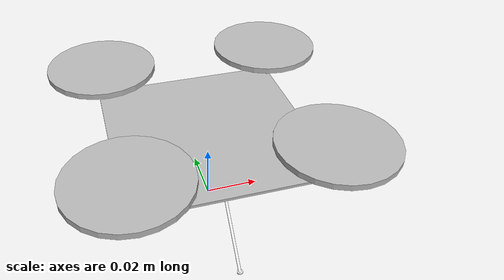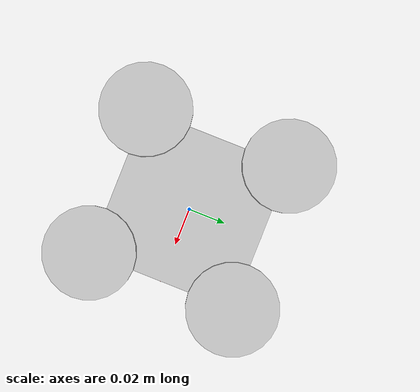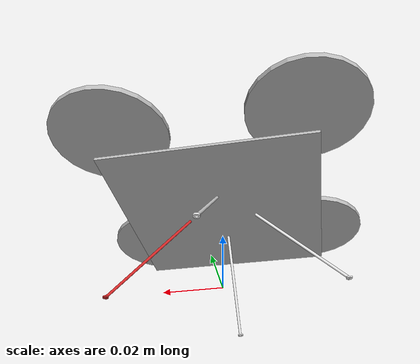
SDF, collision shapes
<?xml version='1.0'?>
<sdf version='1.6'>
  <model name='crazyflie_landing_gears2'>
    <link name='base_link'>
      <pose frame=''>0 -0 0.03 0 -0 0</pose>
      <inertial>
        <pose frame=''>0 0 0 0 -0 0</pose>
        <mass>0.026</mass>
        <inertia>
          <ixx>1.65717e-05</ixx>
          <ixy>0</ixy>
          <ixz>0</ixz>
          <iyy>1.66556e-05</iyy>
          <iyz>0</iyz>
          <izz>2.92617e-05</izz>
        </inertia>
      </inertial>
      <gravity>1</gravity>
      <velocity_decay/>
      <sensor name='head_hokuyo_sensor' type='ray'>
        <pose frame=''>0 0 0.01 0 -1.5707 0</pose>
        <visualize>1</visualize>
        <update_rate>500</update_rate>
        <ray>
          <noise>
            <type>gaussian</type>
            <mean>0</mean>
            <stddev>0.05</stddev>
          </noise>
          <scan>
            <horizontal>
              <samples>1</samples>
              <resolution>1</resolution>
              <min_angle>-0</min_angle>
              <max_angle>0</max_angle>
            </horizontal>
            <vertical>
              <samples>1</samples>
              <min_angle>0</min_angle>
              <max_angle>0</max_angle>
            </vertical>
          </scan>
          <range>
            <min>0.04</min>
            <max>4</max>
            <resolution>0.02</resolution>
          </range>
        </ray>
        <plugin name='laser_back' filename='libgazebo_ros_laser.so'>
          <topicName>zranger2/scan</topicName>
          <robotNamespace>/</robotNamespace>
        </plugin>
      </sensor>
      <sensor name='camera1' type='camera'>
        <pose frame=''>0 0 0.015 0 -1.5707 0</pose>
        <update_rate>500</update_rate>
        <camera name='head'>
          <horizontal_fov>0.733038</horizontal_fov>
          <image>
            <width>36</width>
            <height>36</height>
            <format>R8G8B8</format>
          </image>
          <clip>
            <near>0.08</near>
            <far>300</far>
          </clip>
          <noise>
            <type>gaussian</type>
            <mean>0</mean>
            <stddev>0.007</stddev>
          </noise>
        </camera>
        <plugin name='camera_controller' filename='libgazebo_ros_camera.so'>
          <alwaysOn>1</alwaysOn>
          <updateRate>0.0</updateRate>
          <cameraName>camera</cameraName>
          <imageTopicName>image_raw</imageTopicName>
          <cameraInfoTopicName>camera_info</cameraInfoTopicName>
          <hackBaseline>0.07</hackBaseline>
          <distortionK1>0.0</distortionK1>
          <distortionK2>0.0</distortionK2>
          <distortionK3>0.0</distortionK3>
          <distortionT1>0.0</distortionT1>
          <distortionT2>0.0</distortionT2>
          <robotNamespace>/</robotNamespace>
        </plugin>
      </sensor>
      <self_collide>0</self_collide>
      <enable_wind>0</enable_wind>
      <kinematic>0</kinematic>
      <visual name='base_link_inertia_visual'>
        <pose frame=''>0 0 0 0 -0 0</pose>
        <geometry>
          <mesh>
            <scale>1 1 1</scale>
            <uri>model://crazyflie_landing_gears/meshes/crazyflie.dae</uri>
          </mesh>
        </geometry>
        <material>
          <script>
            <uri>__default__</uri>
            <name>__default__</name>
          </script>
        </material>
        <transparency>0</transparency>
        <cast_shadows>1</cast_shadows>
      </visual>
      <collision name='base_link_inertia_collision'>
        <laser_retro>0</laser_retro>
        <max_contacts>10</max_contacts>
        <pose frame=''>0 0 0 0 -0 0</pose>
        <geometry>
          <box>
            <size>0.07 0.07 0.001</size>
          </box>
        </geometry>
        <surface>
          <friction>
            <ode>
              <mu>1</mu>
              <mu2>1</mu2>
              <fdir1>0 0 0</fdir1>
              <slip1>0</slip1>
              <slip2>0</slip2>
            </ode>
            <torsional>
              <coefficient>1</coefficient>
              <patch_radius>0</patch_radius>
              <surface_radius>0</surface_radius>
              <use_patch_radius>1</use_patch_radius>
              <ode>
                <slip>0</slip>
              </ode>
            </torsional>
          </friction>
          <bounce>
            <restitution_coefficient>0</restitution_coefficient>
            <threshold>1e+06</threshold>
          </bounce>
          <contact>
            <collide_without_contact>0</collide_without_contact>
            <collide_without_contact_bitmask>1</collide_without_contact_bitmask>
            <collide_bitmask>1</collide_bitmask>
            <ode>
              <soft_cfm>0</soft_cfm>
              <soft_erp>0.2</soft_erp>
              <kp>1e+13</kp>
              <kd>1</kd>
              <max_vel>0</max_vel>
              <min_depth>0.001</min_depth>
            </ode>
            <bullet>
              <split_impulse>1</split_impulse>
              <split_impulse_penetration_threshold>-0.01</split_impulse_penetration_threshold>
              <soft_cfm>0</soft_cfm>
              <soft_erp>0.2</soft_erp>
              <kp>1e+13</kp>
              <kd>1</kd>
            </bullet>
          </contact>
        </surface>
      </collision>
    </link>
    <link name='landing_0'>
      <pose frame=''>0.026 -0 0.014 0 -0.785 0</pose>
      <inertial>
        <pose frame=''>0 0 0 0 -0 0</pose>
        <mass>0.0004</mass>
        <inertia>
          <ixx>1.225e-07</ixx>
          <ixy>0</ixy>
          <ixz>0</ixz>
          <iyy>1.225e-07</iyy>
          <iyz>0</iyz>
          <izz>1.5e-10</izz>
        </inertia>
      </inertial>
      <gravity>1</gravity>
      <velocity_decay/>
      <self_collide>0</self_collide>
      <enable_wind>0</enable_wind>
      <kinematic>0</kinematic>
      <visual name='landing_0_visual'>
        <pose frame=''>0 0 0 0 -0 0</pose>
        <geometry>
          <cylinder>
            <radius>0.001</radius>
            <length>0.04</length>
          </cylinder>
        </geometry>
        <material>
          <script>
            <name>Gazebo/Red</name>
            <uri>file://media/materials/scripts/gazebo.material</uri>
          </script>
        </material>
        <transparency>0</transparency>
        <cast_shadows>1</cast_shadows>
      </visual>
      <collision name='landing_0_collision'>
        <laser_retro>0</laser_retro>
        <max_contacts>10</max_contacts>
        <pose frame=''>0 0 0 0 -0 0</pose>
        <geometry>
          <cylinder>
            <radius>0.0005</radius>
            <length>0.04</length>
          </cylinder>
        </geometry>
        <surface>
          <friction>
            <ode>
              <mu>100000</mu>
              <mu2>100000</mu2>
              <fdir1>0 0 0</fdir1>
              <slip1>0</slip1>
              <slip2>0</slip2>
            </ode>
            <torsional>
              <coefficient>1</coefficient>
              <patch_radius>0</patch_radius>
              <surface_radius>0</surface_radius>
              <use_patch_radius>1</use_patch_radius>
              <ode>
                <slip>0</slip>
              </ode>
            </torsional>
          </friction>
          <bounce>
            <restitution_coefficient>0</restitution_coefficient>
            <threshold>1e+06</threshold>
          </bounce>
          <contact>
            <collide_without_contact>0</collide_without_contact>
            <collide_without_contact_bitmask>1</collide_without_contact_bitmask>
            <collide_bitmask>1</collide_bitmask>
            <ode>
              <soft_cfm>0</soft_cfm>
              <soft_erp>0.2</soft_erp>
              <kp>1e+13</kp>
              <kd>1</kd>
              <max_vel>0.01</max_vel>
              <min_depth>0.001</min_depth>
            </ode>
            <bullet>
              <split_impulse>1</split_impulse>
              <split_impulse_penetration_threshold>-0.01</split_impulse_penetration_threshold>
              <soft_cfm>0</soft_cfm>
              <soft_erp>0.2</soft_erp>
              <kp>1e+13</kp>
              <kd>1</kd>
            </bullet>
          </contact>
        </surface>
      </collision>
    </link>
    <link name='landing_1'>
      <pose frame=''>-0 0.026 0.014 0.785 -0 0</pose>
      <inertial>
        <pose frame=''>0 0 0 0 -0 0</pose>
        <mass>0.0004</mass>
        <inertia>
          <ixx>1.225e-07</ixx>
          <ixy>0</ixy>
          <ixz>0</ixz>
          <iyy>1.225e-07</iyy>
          <iyz>0</iyz>
          <izz>1.5e-10</izz>
        </inertia>
      </inertial>
      <gravity>1</gravity>
      <velocity_decay/>
      <self_collide>0</self_collide>
      <enable_wind>0</enable_wind>
      <kinematic>0</kinematic>
      <visual name='landing_1_visual'>
        <pose frame=''>0 0 0 0 -0 0</pose>
        <geometry>
          <cylinder>
            <radius>0.001</radius>
            <length>0.04</length>
          </cylinder>
        </geometry>
        <material>
          <script>
            <name>Gazebo/White</name>
            <uri>file://media/materials/scripts/gazebo.material</uri>
          </script>
        </material>
        <transparency>0</transparency>
        <cast_shadows>1</cast_shadows>
      </visual>
      <collision name='landing_1_collision'>
        <laser_retro>0</laser_retro>
        <max_contacts>10</max_contacts>
        <pose frame=''>0 0 0 0 -0 0</pose>
        <geometry>
          <cylinder>
            <radius>0.0005</radius>
            <length>0.04</length>
          </cylinder>
        </geometry>
        <surface>
          <friction>
            <ode>
              <mu>100000</mu>
              <mu2>100000</mu2>
              <fdir1>0 0 0</fdir1>
              <slip1>0</slip1>
              <slip2>0</slip2>
            </ode>
            <torsional>
              <coefficient>1</coefficient>
              <patch_radius>0</patch_radius>
              <surface_radius>0</surface_radius>
              <use_patch_radius>1</use_patch_radius>
              <ode>
                <slip>0</slip>
              </ode>
            </torsional>
          </friction>
          <bounce>
            <restitution_coefficient>0</restitution_coefficient>
            <threshold>1e+06</threshold>
          </bounce>
          <contact>
            <collide_without_contact>0</collide_without_contact>
            <collide_without_contact_bitmask>1</collide_without_contact_bitmask>
            <collide_bitmask>1</collide_bitmask>
            <ode>
              <soft_cfm>0</soft_cfm>
              <soft_erp>0.2</soft_erp>
              <kp>1e+13</kp>
              <kd>1</kd>
              <max_vel>0.01</max_vel>
              <min_depth>0.001</min_depth>
            </ode>
            <bullet>
              <split_impulse>1</split_impulse>
              <split_impulse_penetration_threshold>-0.01</split_impulse_penetration_threshold>
              <soft_cfm>0</soft_cfm>
              <soft_erp>0.2</soft_erp>
              <kp>1e+13</kp>
              <kd>1</kd>
            </bullet>
          </contact>
        </surface>
      </collision>
    </link>
    <link name='landing_2'>
      <pose frame=''>-0.026 -0 0.014 0 0.785 0</pose>
      <inertial>
        <pose frame=''>0 0 0 0 -0 0</pose>
        <mass>0.0004</mass>
        <inertia>
          <ixx>1.225e-07</ixx>
          <ixy>0</ixy>
          <ixz>0</ixz>
          <iyy>1.225e-07</iyy>
          <iyz>0</iyz>
          <izz>1.5e-10</izz>
        </inertia>
      </inertial>
      <gravity>1</gravity>
      <velocity_decay/>
      <self_collide>0</self_collide>
      <enable_wind>0</enable_wind>
      <kinematic>0</kinematic>
      <visual name='landing_2_visual'>
        <pose frame=''>0 0 0 0 -0 0</pose>
        <geometry>
          <cylinder>
            <radius>0.001</radius>
            <length>0.04</length>
          </cylinder>
        </geometry>
        <material>
          <script>
            <name>Gazebo/White</name>
            <uri>file://media/materials/scripts/gazebo.material</uri>
          </script>
        </material>
        <transparency>0</transparency>
        <cast_shadows>1</cast_shadows>
      </visual>
      <collision name='landing_2_collision'>
        <laser_retro>0</laser_retro>
        <max_contacts>10</max_contacts>
        <pose frame=''>0 0 0 0 -0 0</pose>
        <geometry>
          <cylinder>
            <radius>0.0005</radius>
            <length>0.04</length>
          </cylinder>
        </geometry>
        <surface>
          <friction>
            <ode>
              <mu>100000</mu>
              <mu2>100000</mu2>
              <fdir1>0 0 0</fdir1>
              <slip1>0</slip1>
              <slip2>0</slip2>
            </ode>
            <torsional>
              <coefficient>1</coefficient>
              <patch_radius>0</patch_radius>
              <surface_radius>0</surface_radius>
              <use_patch_radius>1</use_patch_radius>
              <ode>
                <slip>0</slip>
              </ode>
            </torsional>
          </friction>
          <bounce>
            <restitution_coefficient>0</restitution_coefficient>
            <threshold>1e+06</threshold>
          </bounce>
          <contact>
            <collide_without_contact>0</collide_without_contact>
            <collide_without_contact_bitmask>1</collide_without_contact_bitmask>
            <collide_bitmask>1</collide_bitmask>
            <ode>
              <soft_cfm>0</soft_cfm>
              <soft_erp>0.2</soft_erp>
              <kp>1e+13</kp>
              <kd>1</kd>
              <max_vel>0.01</max_vel>
              <min_depth>0.001</min_depth>
            </ode>
            <bullet>
              <split_impulse>1</split_impulse>
              <split_impulse_penetration_threshold>-0.01</split_impulse_penetration_threshold>
              <soft_cfm>0</soft_cfm>
              <soft_erp>0.2</soft_erp>
              <kp>1e+13</kp>
              <kd>1</kd>
            </bullet>
          </contact>
        </surface>
      </collision>
    </link>
    <link name='landing_3'>
      <pose frame=''>-0 -0.026 0.014 -0.785 0 0</pose>
      <inertial>
        <pose frame=''>0 0 0 0 -0 0</pose>
        <mass>0.0004</mass>
        <inertia>
          <ixx>1.225e-07</ixx>
          <ixy>0</ixy>
          <ixz>0</ixz>
          <iyy>1.225e-07</iyy>
          <iyz>0</iyz>
          <izz>1.5e-10</izz>
        </inertia>
      </inertial>
      <gravity>1</gravity>
      <velocity_decay/>
      <self_collide>0</self_collide>
      <enable_wind>0</enable_wind>
      <kinematic>0</kinematic>
      <visual name='landing_3_visual'>
        <pose frame=''>0 0 0 0 -0 0</pose>
        <geometry>
          <cylinder>
            <radius>0.001</radius>
            <length>0.04</length>
          </cylinder>
        </geometry>
        <material>
          <script>
            <name>Gazebo/White</name>
            <uri>file://media/materials/scripts/gazebo.material</uri>
          </script>
        </material>
        <transparency>0</transparency>
        <cast_shadows>1</cast_shadows>
      </visual>
      <collision name='landing_3_collision'>
        <laser_retro>0</laser_retro>
        <max_contacts>10</max_contacts>
        <pose frame=''>0 0 0 0 -0 0</pose>
        <geometry>
          <cylinder>
            <radius>0.0005</radius>
            <length>0.04</length>
          </cylinder>
        </geometry>
        <surface>
          <friction>
            <ode>
              <mu>100000</mu>
              <mu2>100000</mu2>
              <fdir1>0 0 0</fdir1>
              <slip1>0</slip1>
              <slip2>0</slip2>
            </ode>
            <torsional>
              <coefficient>1</coefficient>
              <patch_radius>0</patch_radius>
              <surface_radius>0</surface_radius>
              <use_patch_radius>1</use_patch_radius>
              <ode>
                <slip>0</slip>
              </ode>
            </torsional>
          </friction>
          <bounce>
            <restitution_coefficient>0</restitution_coefficient>
            <threshold>1e+06</threshold>
          </bounce>
          <contact>
            <collide_without_contact>0</collide_without_contact>
            <collide_without_contact_bitmask>1</collide_without_contact_bitmask>
            <collide_bitmask>1</collide_bitmask>
            <ode>
              <soft_cfm>0</soft_cfm>
              <soft_erp>0.2</soft_erp>
              <kp>1e+13</kp>
              <kd>1</kd>
              <max_vel>0.01</max_vel>
              <min_depth>0.001</min_depth>
            </ode>
            <bullet>
              <split_impulse>1</split_impulse>
              <split_impulse_penetration_threshold>-0.01</split_impulse_penetration_threshold>
              <soft_cfm>0</soft_cfm>
              <soft_erp>0.2</soft_erp>
              <kp>1e+13</kp>
              <kd>1</kd>
            </bullet>
          </contact>
        </surface>
      </collision>
    </link>
    <link name='pad_0'>
      <pose frame=''>0.04 -0 -0 0 -0 0</pose>
      <inertial>
        <pose frame=''>0 0 0 0 -0 0</pose>
        <mass>0.0001</mass>
        <inertia>
          <ixx>2.5e-09</ixx>
          <ixy>0</ixy>
          <ixz>0</ixz>
          <iyy>2.5e-09</iyy>
          <iyz>0</iyz>
          <izz>5e-09</izz>
        </inertia>
      </inertial>
      <gravity>1</gravity>
      <velocity_decay/>
      <self_collide>0</self_collide>
      <enable_wind>0</enable_wind>
      <kinematic>0</kinematic>
      <visual name='pad_0_visual'>
        <pose frame=''>0 0 0 0 -0 0</pose>
        <geometry>
          <cylinder>
            <length>0.0005</length>
            <radius>0.001</radius>
          </cylinder>
        </geometry>
        <material>
          <script>
            <name>Gazebo/Red</name>
            <uri>file://media/materials/scripts/gazebo.material</uri>
          </script>
        </material>
        <transparency>0</transparency>
        <cast_shadows>1</cast_shadows>
      </visual>
      <collision name='pad_0_collision'>
        <laser_retro>0</laser_retro>
        <max_contacts>10</max_contacts>
        <pose frame=''>0 0 0 0 -0 0</pose>
        <geometry>
          <cylinder>
            <radius>0.001</radius>
            <length>0.0005</length>
          </cylinder>
        </geometry>
        <surface>
          <friction>
            <ode>
              <mu>100000</mu>
              <mu2>100000</mu2>
              <fdir1>0 0 0</fdir1>
              <slip1>0</slip1>
              <slip2>0</slip2>
            </ode>
            <torsional>
              <coefficient>1</coefficient>
              <patch_radius>0</patch_radius>
              <surface_radius>0</surface_radius>
              <use_patch_radius>1</use_patch_radius>
              <ode>
                <slip>0</slip>
              </ode>
            </torsional>
          </friction>
          <bounce>
            <restitution_coefficient>0</restitution_coefficient>
            <threshold>1e+06</threshold>
          </bounce>
          <contact>
            <collide_without_contact>0</collide_without_contact>
            <collide_without_contact_bitmask>1</collide_without_contact_bitmask>
            <collide_bitmask>1</collide_bitmask>
            <ode>
              <soft_cfm>0</soft_cfm>
              <soft_erp>0.2</soft_erp>
              <kp>1e+13</kp>
              <kd>1</kd>
              <max_vel>0.01</max_vel>
              <min_depth>0.001</min_depth>
            </ode>
            <bullet>
              <split_impulse>1</split_impulse>
              <split_impulse_penetration_threshold>-0.01</split_impulse_penetration_threshold>
              <soft_cfm>0</soft_cfm>
              <soft_erp>0.2</soft_erp>
              <kp>1e+13</kp>
              <kd>1</kd>
            </bullet>
          </contact>
        </surface>
      </collision>
    </link>
    <link name='pad_1'>
      <pose frame=''>-0 0.04 -0 0 -0 0</pose>
      <inertial>
        <pose frame=''>0 0 0 0 -0 0</pose>
        <mass>0.0001</mass>
        <inertia>
          <ixx>2.5e-09</ixx>
          <ixy>0</ixy>
          <ixz>0</ixz>
          <iyy>2.5e-09</iyy>
          <iyz>0</iyz>
          <izz>5e-09</izz>
        </inertia>
      </inertial>
      <gravity>1</gravity>
      <velocity_decay/>
      <self_collide>0</self_collide>
      <enable_wind>0</enable_wind>
      <kinematic>0</kinematic>
      <visual name='pad_1_visual'>
        <pose frame=''>0 0 0 0 -0 0</pose>
        <geometry>
          <cylinder>
            <length>0.0005</length>
            <radius>0.001</radius>
          </cylinder>
        </geometry>
        <material>
          <script>
            <name>Gazebo/White</name>
            <uri>file://media/materials/scripts/gazebo.material</uri>
          </script>
        </material>
        <transparency>0</transparency>
        <cast_shadows>1</cast_shadows>
      </visual>
      <collision name='pad_1_collision'>
        <laser_retro>0</laser_retro>
        <max_contacts>10</max_contacts>
        <pose frame=''>0 0 0 0 -0 0</pose>
        <geometry>
          <cylinder>
            <radius>0.001</radius>
            <length>0.0005</length>
          </cylinder>
        </geometry>
        <surface>
          <friction>
            <ode>
              <mu>100000</mu>
              <mu2>100000</mu2>
              <fdir1>0 0 0</fdir1>
              <slip1>0</slip1>
              <slip2>0</slip2>
            </ode>
            <torsional>
              <coefficient>1</coefficient>
              <patch_radius>0</patch_radius>
              <surface_radius>0</surface_radius>
              <use_patch_radius>1</use_patch_radius>
              <ode>
                <slip>0</slip>
              </ode>
            </torsional>
          </friction>
          <bounce>
            <restitution_coefficient>0</restitution_coefficient>
            <threshold>1e+06</threshold>
          </bounce>
          <contact>
            <collide_without_contact>0</collide_without_contact>
            <collide_without_contact_bitmask>1</collide_without_contact_bitmask>
            <collide_bitmask>1</collide_bitmask>
            <ode>
              <soft_cfm>0</soft_cfm>
              <soft_erp>0.2</soft_erp>
              <kp>1e+13</kp>
              <kd>1</kd>
              <max_vel>0.01</max_vel>
              <min_depth>0.001</min_depth>
            </ode>
            <bullet>
              <split_impulse>1</split_impulse>
              <split_impulse_penetration_threshold>-0.01</split_impulse_penetration_threshold>
              <soft_cfm>0</soft_cfm>
              <soft_erp>0.2</soft_erp>
              <kp>1e+13</kp>
              <kd>1</kd>
            </bullet>
          </contact>
        </surface>
      </collision>
    </link>
    <link name='pad_2'>
      <pose frame=''>-0.04 0 0 0 -0 0</pose>
      <inertial>
        <pose frame=''>0 0 0 0 -0 0</pose>
        <mass>0.0001</mass>
        <inertia>
          <ixx>2.5e-09</ixx>
          <ixy>0</ixy>
          <ixz>0</ixz>
          <iyy>2.5e-09</iyy>
          <iyz>0</iyz>
          <izz>5e-09</izz>
        </inertia>
      </inertial>
      <gravity>1</gravity>
      <velocity_decay/>
      <self_collide>0</self_collide>
      <enable_wind>0</enable_wind>
      <kinematic>0</kinematic>
      <visual name='pad_2_visual'>
        <pose frame=''>0 0 0 0 -0 0</pose>
        <geometry>
          <cylinder>
            <length>0.0005</length>
            <radius>0.001</radius>
          </cylinder>
        </geometry>
        <material>
          <script>
            <name>Gazebo/White</name>
            <uri>file://media/materials/scripts/gazebo.material</uri>
          </script>
        </material>
        <transparency>0</transparency>
        <cast_shadows>1</cast_shadows>
      </visual>
      <collision name='pad_2_collision'>
        <laser_retro>0</laser_retro>
        <max_contacts>10</max_contacts>
        <pose frame=''>0 0 0 0 -0 0</pose>
        <geometry>
          <cylinder>
            <radius>0.001</radius>
            <length>0.0005</length>
          </cylinder>
        </geometry>
        <surface>
          <friction>
            <ode>
              <mu>100000</mu>
              <mu2>100000</mu2>
              <fdir1>0 0 0</fdir1>
              <slip1>0</slip1>
              <slip2>0</slip2>
            </ode>
            <torsional>
              <coefficient>1</coefficient>
              <patch_radius>0</patch_radius>
              <surface_radius>0</surface_radius>
              <use_patch_radius>1</use_patch_radius>
              <ode>
                <slip>0</slip>
              </ode>
            </torsional>
          </friction>
          <bounce>
            <restitution_coefficient>0</restitution_coefficient>
            <threshold>1e+06</threshold>
          </bounce>
          <contact>
            <collide_without_contact>0</collide_without_contact>
            <collide_without_contact_bitmask>1</collide_without_contact_bitmask>
            <collide_bitmask>1</collide_bitmask>
            <ode>
              <soft_cfm>0</soft_cfm>
              <soft_erp>0.2</soft_erp>
              <kp>1e+13</kp>
              <kd>1</kd>
              <max_vel>0.01</max_vel>
              <min_depth>0.001</min_depth>
            </ode>
            <bullet>
              <split_impulse>1</split_impulse>
              <split_impulse_penetration_threshold>-0.01</split_impulse_penetration_threshold>
              <soft_cfm>0</soft_cfm>
              <soft_erp>0.2</soft_erp>
              <kp>1e+13</kp>
              <kd>1</kd>
            </bullet>
          </contact>
        </surface>
      </collision>
    </link>
    <link name='pad_3'>
      <pose frame=''>0 -0.04 -0 0 -0 0</pose>
      <inertial>
        <pose frame=''>0 0 0 0 -0 0</pose>
        <mass>0.0001</mass>
        <inertia>
          <ixx>2.5e-09</ixx>
          <ixy>0</ixy>
          <ixz>0</ixz>
          <iyy>2.5e-09</iyy>
          <iyz>0</iyz>
          <izz>5e-09</izz>
        </inertia>
      </inertial>
      <gravity>1</gravity>
      <velocity_decay/>
      <self_collide>0</self_collide>
      <enable_wind>0</enable_wind>
      <kinematic>0</kinematic>
      <visual name='pad_3_visual'>
        <pose frame=''>0 0 0 0 -0 0</pose>
        <geometry>
          <cylinder>
            <length>0.0005</length>
            <radius>0.001</radius>
          </cylinder>
        </geometry>
        <material>
          <script>
            <name>Gazebo/White</name>
            <uri>file://media/materials/scripts/gazebo.material</uri>
          </script>
        </material>
        <transparency>0</transparency>
        <cast_shadows>1</cast_shadows>
      </visual>
      <collision name='pad_3_collision'>
        <laser_retro>0</laser_retro>
        <max_contacts>10</max_contacts>
        <pose frame=''>0 0 0 0 -0 0</pose>
        <geometry>
          <cylinder>
            <radius>0.001</radius>
            <length>0.0005</length>
          </cylinder>
        </geometry>
        <surface>
          <friction>
            <ode>
              <mu>100000</mu>
              <mu2>100000</mu2>
              <fdir1>0 0 0</fdir1>
              <slip1>0</slip1>
              <slip2>0</slip2>
            </ode>
            <torsional>
              <coefficient>1</coefficient>
              <patch_radius>0</patch_radius>
              <surface_radius>0</surface_radius>
              <use_patch_radius>1</use_patch_radius>
              <ode>
                <slip>0</slip>
              </ode>
            </torsional>
          </friction>
          <bounce>
            <restitution_coefficient>0</restitution_coefficient>
            <threshold>1e+06</threshold>
          </bounce>
          <contact>
            <collide_without_contact>0</collide_without_contact>
            <collide_without_contact_bitmask>1</collide_without_contact_bitmask>
            <collide_bitmask>1</collide_bitmask>
            <ode>
              <soft_cfm>0</soft_cfm>
              <soft_erp>0.2</soft_erp>
              <kp>1e+13</kp>
              <kd>1</kd>
              <max_vel>0.01</max_vel>
              <min_depth>0.001</min_depth>
            </ode>
            <bullet>
              <split_impulse>1</split_impulse>
              <split_impulse_penetration_threshold>-0.01</split_impulse_penetration_threshold>
              <soft_cfm>0</soft_cfm>
              <soft_erp>0.2</soft_erp>
              <kp>1e+13</kp>
              <kd>1</kd>
            </bullet>
          </contact>
        </surface>
      </collision>
    </link>
    <link name='rotor_0'>
      <pose frame=''>0.032527 -0.032527 0.0425 0 -0 0</pose>
      <inertial>
        <pose frame=''>0 0 0 0 -0 0</pose>
        <mass>0.00075</mass>
        <inertia>
          <ixx>1.61875e-07</ixx>
          <ixy>0</ixy>
          <ixz>0</ixz>
          <iyy>8.86375e-06</iyy>
          <iyz>0</iyz>
          <izz>9.01687e-06</izz>
        </inertia>
      </inertial>
      <gravity>1</gravity>
      <velocity_decay/>
      <self_collide>0</self_collide>
      <enable_wind>0</enable_wind>
      <kinematic>0</kinematic>
      <visual name='rotor_0_visual'>
        <pose frame=''>0 0 0 0 -0 0</pose>
        <geometry>
          <mesh>
            <scale>1 1 1</scale>
            <uri>model://crazyflie_landing_gears/meshes/crazyflie_prop.dae</uri>
          </mesh>
        </geometry>
        <material>
          <script>
            <uri>__default__</uri>
            <name>__default__</name>
          </script>
        </material>
        <transparency>0</transparency>
        <cast_shadows>1</cast_shadows>
      </visual>
      <collision name='rotor_0_collision'>
        <laser_retro>0</laser_retro>
        <max_contacts>10</max_contacts>
        <pose frame=''>0 0 0 0 -0 0</pose>
        <geometry>
          <cylinder>
            <radius>0.02</radius>
            <length>0.002</length>
          </cylinder>
        </geometry>
        <surface>
          <friction>
            <ode>
              <mu>1</mu>
              <mu2>1</mu2>
              <fdir1>0 0 0</fdir1>
              <slip1>0</slip1>
              <slip2>0</slip2>
            </ode>
            <torsional>
              <coefficient>1</coefficient>
              <patch_radius>0</patch_radius>
              <surface_radius>0</surface_radius>
              <use_patch_radius>1</use_patch_radius>
              <ode>
                <slip>0</slip>
              </ode>
            </torsional>
          </friction>
          <bounce>
            <restitution_coefficient>0</restitution_coefficient>
            <threshold>1e+06</threshold>
          </bounce>
          <contact>
            <collide_without_contact>0</collide_without_contact>
            <collide_without_contact_bitmask>1</collide_without_contact_bitmask>
            <collide_bitmask>1</collide_bitmask>
            <ode>
              <soft_cfm>0</soft_cfm>
              <soft_erp>0.2</soft_erp>
              <kp>1e+13</kp>
              <kd>1</kd>
              <max_vel>0.01</max_vel>
              <min_depth>0</min_depth>
            </ode>
            <bullet>
              <split_impulse>1</split_impulse>
              <split_impulse_penetration_threshold>-0.01</split_impulse_penetration_threshold>
              <soft_cfm>0</soft_cfm>
              <soft_erp>0.2</soft_erp>
              <kp>1e+13</kp>
              <kd>1</kd>
            </bullet>
          </contact>
        </surface>
      </collision>
    </link>
    <link name='rotor_1'>
      <pose frame=''>-0.032527 0.032527 0.0425 0 -0 0</pose>
      <inertial>
        <pose frame=''>0 0 0 0 -0 0</pose>
        <mass>0.00075</mass>
        <inertia>
          <ixx>1.61875e-07</ixx>
          <ixy>0</ixy>
          <ixz>0</ixz>
          <iyy>8.86375e-06</iyy>
          <iyz>0</iyz>
          <izz>9.01687e-06</izz>
        </inertia>
      </inertial>
      <gravity>1</gravity>
      <velocity_decay/>
      <self_collide>0</self_collide>
      <enable_wind>0</enable_wind>
      <kinematic>0</kinematic>
      <visual name='rotor_1_visual'>
        <pose frame=''>0 0 0 0 -0 0</pose>
        <geometry>
          <mesh>
            <scale>1 1 1</scale>
            <uri>model://crazyflie_landing_gears/meshes/crazyflie_prop.dae</uri>
          </mesh>
        </geometry>
        <material>
          <script>
            <uri>__default__</uri>
            <name>__default__</name>
          </script>
        </material>
        <transparency>0</transparency>
        <cast_shadows>1</cast_shadows>
      </visual>
      <collision name='rotor_1_collision'>
        <laser_retro>0</laser_retro>
        <max_contacts>10</max_contacts>
        <pose frame=''>0 0 0 0 -0 0</pose>
        <geometry>
          <cylinder>
            <radius>0.02</radius>
            <length>0.002</length>
          </cylinder>
        </geometry>
        <surface>
          <friction>
            <ode>
              <mu>1</mu>
              <mu2>1</mu2>
              <fdir1>0 0 0</fdir1>
              <slip1>0</slip1>
              <slip2>0</slip2>
            </ode>
            <torsional>
              <coefficient>1</coefficient>
              <patch_radius>0</patch_radius>
              <surface_radius>0</surface_radius>
              <use_patch_radius>1</use_patch_radius>
              <ode>
                <slip>0</slip>
              </ode>
            </torsional>
          </friction>
          <bounce>
            <restitution_coefficient>0</restitution_coefficient>
            <threshold>1e+06</threshold>
          </bounce>
          <contact>
            <collide_without_contact>0</collide_without_contact>
            <collide_without_contact_bitmask>1</collide_without_contact_bitmask>
            <collide_bitmask>1</collide_bitmask>
            <ode>
              <soft_cfm>0</soft_cfm>
              <soft_erp>0.2</soft_erp>
              <kp>1e+13</kp>
              <kd>1</kd>
              <max_vel>0.01</max_vel>
              <min_depth>0</min_depth>
            </ode>
            <bullet>
              <split_impulse>1</split_impulse>
              <split_impulse_penetration_threshold>-0.01</split_impulse_penetration_threshold>
              <soft_cfm>0</soft_cfm>
              <soft_erp>0.2</soft_erp>
              <kp>1e+13</kp>
              <kd>1</kd>
            </bullet>
          </contact>
        </surface>
      </collision>
    </link>
    <link name='rotor_2'>
      <pose frame=''>0.032527 0.032527 0.0425 0 -0 0</pose>
      <inertial>
        <pose frame=''>0 0 0 0 -0 0</pose>
        <mass>0.00075</mass>
        <inertia>
          <ixx>1.61875e-07</ixx>
          <ixy>0</ixy>
          <ixz>0</ixz>
          <iyy>8.86375e-06</iyy>
          <iyz>0</iyz>
          <izz>9.01687e-06</izz>
        </inertia>
      </inertial>
      <gravity>1</gravity>
      <velocity_decay/>
      <self_collide>0</self_collide>
      <enable_wind>0</enable_wind>
      <kinematic>0</kinematic>
      <visual name='rotor_2_visual'>
        <pose frame=''>0 0 0 0 -0 0</pose>
        <geometry>
          <mesh>
            <scale>1 1 1</scale>
            <uri>model://crazyflie_landing_gears/meshes/crazyflie_prop.dae</uri>
          </mesh>
        </geometry>
        <material>
          <script>
            <uri>__default__</uri>
            <name>__default__</name>
          </script>
        </material>
        <transparency>0</transparency>
        <cast_shadows>1</cast_shadows>
      </visual>
      <collision name='rotor_2_collision'>
        <laser_retro>0</laser_retro>
        <max_contacts>10</max_contacts>
        <pose frame=''>0 0 0 0 -0 0</pose>
        <geometry>
          <cylinder>
            <radius>0.02</radius>
            <length>0.002</length>
          </cylinder>
        </geometry>
        <surface>
          <friction>
            <ode>
              <mu>1</mu>
              <mu2>1</mu2>
              <fdir1>0 0 0</fdir1>
              <slip1>0</slip1>
              <slip2>0</slip2>
            </ode>
            <torsional>
              <coefficient>1</coefficient>
              <patch_radius>0</patch_radius>
              <surface_radius>0</surface_radius>
              <use_patch_radius>1</use_patch_radius>
              <ode>
                <slip>0</slip>
              </ode>
            </torsional>
          </friction>
          <bounce>
            <restitution_coefficient>0</restitution_coefficient>
            <threshold>1e+06</threshold>
          </bounce>
          <contact>
            <collide_without_contact>0</collide_without_contact>
            <collide_without_contact_bitmask>1</collide_without_contact_bitmask>
            <collide_bitmask>1</collide_bitmask>
            <ode>
              <soft_cfm>0</soft_cfm>
              <soft_erp>0.2</soft_erp>
              <kp>1e+13</kp>
              <kd>1</kd>
              <max_vel>0.01</max_vel>
              <min_depth>0</min_depth>
            </ode>
            <bullet>
              <split_impulse>1</split_impulse>
              <split_impulse_penetration_threshold>-0.01</split_impulse_penetration_threshold>
              <soft_cfm>0</soft_cfm>
              <soft_erp>0.2</soft_erp>
              <kp>1e+13</kp>
              <kd>1</kd>
            </bullet>
          </contact>
        </surface>
      </collision>
    </link>
    <link name='rotor_3'>
      <pose frame=''>-0.032527 -0.032527 0.0425 0 -0 0</pose>
      <inertial>
        <pose frame=''>0 0 0 0 -0 0</pose>
        <mass>0.00075</mass>
        <inertia>
          <ixx>1.61875e-07</ixx>
          <ixy>0</ixy>
          <ixz>0</ixz>
          <iyy>8.86375e-06</iyy>
          <iyz>0</iyz>
          <izz>9.01687e-06</izz>
        </inertia>
      </inertial>
      <gravity>1</gravity>
      <velocity_decay/>
      <self_collide>0</self_collide>
      <enable_wind>0</enable_wind>
      <kinematic>0</kinematic>
      <visual name='rotor_3_visual'>
        <pose frame=''>0 0 0 0 -0 0</pose>
        <geometry>
          <mesh>
            <scale>1 1 1</scale>
            <uri>model://crazyflie_landing_gears/meshes/crazyflie_prop.dae</uri>
          </mesh>
        </geometry>
        <material>
          <script>
            <uri>__default__</uri>
            <name>__default__</name>
          </script>
        </material>
        <transparency>0</transparency>
        <cast_shadows>1</cast_shadows>
      </visual>
      <collision name='rotor_3_collision'>
        <laser_retro>0</laser_retro>
        <max_contacts>10</max_contacts>
        <pose frame=''>0 0 0 0 -0 0</pose>
        <geometry>
          <cylinder>
            <radius>0.02</radius>
            <length>0.002</length>
          </cylinder>
        </geometry>
        <surface>
          <friction>
            <ode>
              <mu>1</mu>
              <mu2>1</mu2>
              <fdir1>0 0 0</fdir1>
              <slip1>0</slip1>
              <slip2>0</slip2>
            </ode>
            <torsional>
              <coefficient>1</coefficient>
              <patch_radius>0</patch_radius>
              <surface_radius>0</surface_radius>
              <use_patch_radius>1</use_patch_radius>
              <ode>
                <slip>0</slip>
              </ode>
            </torsional>
          </friction>
          <bounce>
            <restitution_coefficient>0</restitution_coefficient>
            <threshold>1e+06</threshold>
          </bounce>
          <contact>
            <collide_without_contact>0</collide_without_contact>
            <collide_without_contact_bitmask>1</collide_without_contact_bitmask>
            <collide_bitmask>1</collide_bitmask>
            <ode>
              <soft_cfm>0</soft_cfm>
              <soft_erp>0.2</soft_erp>
              <kp>1e+13</kp>
              <kd>1</kd>
              <max_vel>0.01</max_vel>
              <min_depth>0</min_depth>
            </ode>
            <bullet>
              <split_impulse>1</split_impulse>
              <split_impulse_penetration_threshold>-0.01</split_impulse_penetration_threshold>
              <soft_cfm>0</soft_cfm>
              <soft_erp>0.2</soft_erp>
              <kp>1e+13</kp>
              <kd>1</kd>
            </bullet>
          </contact>
        </surface>
      </collision>
    </link>
    <joint name='landing_0_joint' type='revolute'>
      <parent>base_link</parent>
      <child>landing_0</child>
      <pose frame=''>0.012 0 0.029 0 0 0</pose>
      <axis>
        <xyz>0 1 0</xyz>
        <use_parent_model_frame>1</use_parent_model_frame>
        <limit>
          <lower>-0.7</lower>
          <upper>0.7</upper>
          <effort>1e-05</effort>
          <velocity>0</velocity>
        </limit>
        <dynamics>
          <spring_reference>0</spring_reference>
          <spring_stiffness>0</spring_stiffness>
          <damping>1e-05</damping>
          <friction>1e-06</friction>
        </dynamics>
      </axis>
      <physics>
        <ode>
          <limit>
            <cfm>0</cfm>
            <erp>0.2</erp>
          </limit>
          <suspension>
            <cfm>0</cfm>
            <erp>0.2</erp>
          </suspension>
        </ode>
      </physics>
    </joint>
    <joint name='landing_1_joint' type='revolute'>
      <parent>base_link</parent>
      <child>landing_1</child>
      <pose frame=''>0 0.012 0.029 0 0 0</pose>
      <axis>
        <xyz>1 0 0</xyz>
        <use_parent_model_frame>1</use_parent_model_frame>
        <limit>
          <lower>-0.7</lower>
          <upper>0.7</upper>
          <effort>1e-05</effort>
          <velocity>0</velocity>
        </limit>
        <dynamics>
          <spring_reference>0</spring_reference>
          <spring_stiffness>0</spring_stiffness>
          <damping>1e-05</damping>
          <friction>1e-06</friction>
        </dynamics>
      </axis>
      <physics>
        <ode>
          <limit>
            <cfm>0</cfm>
            <erp>0.2</erp>
          </limit>
          <suspension>
            <cfm>0</cfm>
            <erp>0.2</erp>
          </suspension>
        </ode>
      </physics>
    </joint>
    <joint name='landing_2_joint' type='revolute'>
      <parent>base_link</parent>
      <child>landing_2</child>
      <pose frame=''>-0.012 0 0.029 0 0 0</pose>
      <axis>
        <xyz>0 1 0</xyz>
        <use_parent_model_frame>1</use_parent_model_frame>
        <limit>
          <lower>-0.7</lower>
          <upper>0.7</upper>
          <effort>1e-05</effort>
          <velocity>0</velocity>
        </limit>
        <dynamics>
          <spring_reference>0</spring_reference>
          <spring_stiffness>0</spring_stiffness>
          <damping>1e-05</damping>
          <friction>1e-06</friction>
        </dynamics>
      </axis>
      <physics>
        <ode>
          <limit>
            <cfm>0</cfm>
            <erp>0.2</erp>
          </limit>
          <suspension>
            <cfm>0</cfm>
            <erp>0.2</erp>
          </suspension>
        </ode>
      </physics>
    </joint>
    <joint name='landing_3_joint' type='revolute'>
      <parent>base_link</parent>
      <child>landing_3</child>
      <pose frame=''>0 -0.012 0.029 0 0 0</pose>
      <axis>
        <xyz>1 0 0</xyz>
        <use_parent_model_frame>1</use_parent_model_frame>
        <limit>
          <lower>-0.7</lower>
          <upper>0.7</upper>
          <effort>1e-05</effort>
          <velocity>0</velocity>
        </limit>
        <dynamics>
          <spring_reference>0</spring_reference>
          <spring_stiffness>0</spring_stiffness>
          <damping>1e-05</damping>
          <friction>1e-06</friction>
        </dynamics>
      </axis>
      <physics>
        <ode>
          <limit>
            <cfm>0</cfm>
            <erp>0.2</erp>
          </limit>
          <suspension>
            <cfm>0</cfm>
            <erp>0.2</erp>
          </suspension>
        </ode>
      </physics>
    </joint>
    <joint name='pad_0_joint' type='revolute'>
      <parent>landing_0</parent>
      <child>pad_0</child>
      <pose frame=''>0 0 0 0 -0 0</pose>
      <axis>
        <xyz>0 1 0</xyz>
        <use_parent_model_frame>0</use_parent_model_frame>
        <limit>
          <lower>-1e+16</lower>
          <upper>1e+16</upper>
          <effort>-1</effort>
          <velocity>-1</velocity>
        </limit>
        <dynamics>
          <spring_reference>0</spring_reference>
          <spring_stiffness>0</spring_stiffness>
          <damping>0</damping>
          <friction>0</friction>
        </dynamics>
      </axis>
      <physics>
        <ode>
          <limit>
            <cfm>0</cfm>
            <erp>0.2</erp>
          </limit>
          <suspension>
            <cfm>0</cfm>
            <erp>0.2</erp>
          </suspension>
        </ode>
      </physics>
    </joint>
    <joint name='pad_1_joint' type='revolute'>
      <parent>landing_1</parent>
      <child>pad_1</child>
      <pose frame=''>0 0 0 0 -0 0</pose>
      <axis>
        <xyz>1 0 0</xyz>
        <use_parent_model_frame>0</use_parent_model_frame>
        <limit>
          <lower>-1e+16</lower>
          <upper>1e+16</upper>
          <effort>-1</effort>
          <velocity>-1</velocity>
        </limit>
        <dynamics>
          <spring_reference>0</spring_reference>
          <spring_stiffness>0</spring_stiffness>
          <damping>0</damping>
          <friction>0</friction>
        </dynamics>
      </axis>
      <physics>
        <ode>
          <limit>
            <cfm>0</cfm>
            <erp>0.2</erp>
          </limit>
          <suspension>
            <cfm>0</cfm>
            <erp>0.2</erp>
          </suspension>
        </ode>
      </physics>
    </joint>
    <joint name='pad_2_joint' type='revolute'>
      <parent>landing_2</parent>
      <child>pad_2</child>
      <pose frame=''>0 0 0 0 -0 0</pose>
      <axis>
        <xyz>0 1 0</xyz>
        <use_parent_model_frame>0</use_parent_model_frame>
        <limit>
          <lower>-1e+16</lower>
          <upper>1e+16</upper>
          <effort>-1</effort>
          <velocity>-1</velocity>
        </limit>
        <dynamics>
          <spring_reference>0</spring_reference>
          <spring_stiffness>0</spring_stiffness>
          <damping>0</damping>
          <friction>0</friction>
        </dynamics>
      </axis>
      <physics>
        <ode>
          <limit>
            <cfm>0</cfm>
            <erp>0.2</erp>
          </limit>
          <suspension>
            <cfm>0</cfm>
            <erp>0.2</erp>
          </suspension>
        </ode>
      </physics>
    </joint>
    <joint name='pad_3_joint' type='revolute'>
      <parent>landing_3</parent>
      <child>pad_3</child>
      <pose frame=''>0 0 0 0 -0 0</pose>
      <axis>
        <xyz>1 0 0</xyz>
        <use_parent_model_frame>0</use_parent_model_frame>
        <limit>
          <lower>-1e+16</lower>
          <upper>1e+16</upper>
          <effort>-1</effort>
          <velocity>-1</velocity>
        </limit>
        <dynamics>
          <spring_reference>0</spring_reference>
          <spring_stiffness>0</spring_stiffness>
          <damping>0</damping>
          <friction>0</friction>
        </dynamics>
      </axis>
      <physics>
        <ode>
          <limit>
            <cfm>0</cfm>
            <erp>0.2</erp>
          </limit>
          <suspension>
            <cfm>0</cfm>
            <erp>0.2</erp>
          </suspension>
        </ode>
      </physics>
    </joint>
    <joint name='rotor_0_joint' type='revolute'>
      <parent>base_link</parent>
      <child>rotor_0</child>
      <pose frame=''>0 0 0 0 -0 0</pose>
      <axis>
        <xyz>0 0 1</xyz>
        <use_parent_model_frame>1</use_parent_model_frame>
        <limit>
          <lower>-1e+16</lower>
          <upper>1e+16</upper>
          <effort>-1</effort>
          <velocity>-1</velocity>
        </limit>
        <dynamics>
          <spring_reference>0</spring_reference>
          <spring_stiffness>0</spring_stiffness>
          <damping>0</damping>
          <friction>0</friction>
        </dynamics>
      </axis>
      <physics>
        <ode>
          <limit>
            <cfm>0</cfm>
            <erp>0.2</erp>
          </limit>
          <suspension>
            <cfm>0</cfm>
            <erp>0.2</erp>
          </suspension>
        </ode>
      </physics>
    </joint>
    <joint name='rotor_1_joint' type='revolute'>
      <parent>base_link</parent>
      <child>rotor_1</child>
      <pose frame=''>0 0 0 0 -0 0</pose>
      <axis>
        <xyz>0 0 1</xyz>
        <use_parent_model_frame>1</use_parent_model_frame>
        <limit>
          <lower>-1e+16</lower>
          <upper>1e+16</upper>
          <effort>-1</effort>
          <velocity>-1</velocity>
        </limit>
        <dynamics>
          <spring_reference>0</spring_reference>
          <spring_stiffness>0</spring_stiffness>
          <damping>0</damping>
          <friction>0</friction>
        </dynamics>
      </axis>
      <physics>
        <ode>
          <limit>
            <cfm>0</cfm>
            <erp>0.2</erp>
          </limit>
          <suspension>
            <cfm>0</cfm>
            <erp>0.2</erp>
          </suspension>
        </ode>
      </physics>
    </joint>
    <joint name='rotor_2_joint' type='revolute'>
      <parent>base_link</parent>
      <child>rotor_2</child>
      <pose frame=''>0 0 0 0 -0 0</pose>
      <axis>
        <xyz>0 0 1</xyz>
        <use_parent_model_frame>1</use_parent_model_frame>
        <limit>
          <lower>-1e+16</lower>
          <upper>1e+16</upper>
          <effort>-1</effort>
          <velocity>-1</velocity>
        </limit>
        <dynamics>
          <spring_reference>0</spring_reference>
          <spring_stiffness>0</spring_stiffness>
          <damping>0</damping>
          <friction>0</friction>
        </dynamics>
      </axis>
      <physics>
        <ode>
          <limit>
            <cfm>0</cfm>
            <erp>0.2</erp>
          </limit>
          <suspension>
            <cfm>0</cfm>
            <erp>0.2</erp>
          </suspension>
        </ode>
      </physics>
    </joint>
    <joint name='rotor_3_joint' type='revolute'>
      <parent>base_link</parent>
      <child>rotor_3</child>
      <pose frame=''>0 0 0 0 -0 0</pose>
      <axis>
        <xyz>0 0 1</xyz>
        <use_parent_model_frame>1</use_parent_model_frame>
        <limit>
          <lower>-1e+16</lower>
          <upper>1e+16</upper>
          <effort>-1</effort>
          <velocity>-1</velocity>
        </limit>
        <dynamics>
          <spring_reference>0</spring_reference>
          <spring_stiffness>0</spring_stiffness>
          <damping>0</damping>
          <friction>0</friction>
        </dynamics>
      </axis>
      <physics>
        <ode>
          <limit>
            <cfm>0</cfm>
            <erp>0.2</erp>
          </limit>
          <suspension>
            <cfm>0</cfm>
            <erp>0.2</erp>
          </suspension>
        </ode>
      </physics>
    </joint>
    <static>0</static>
    <allow_auto_disable>1</allow_auto_disable>
    <plugin name='back_left_motor_model' filename='libgazebo_motor_model.so'>
      <robotNamespace/>
      <jointName>rotor_1_joint</jointName>
      <linkName>rotor_1</linkName>
      <turningDirection>ccw</turningDirection>
      <timeConstantUp>0.0001</timeConstantUp>
      <timeConstantDown>0.0001</timeConstantDown>
      <maxRotVelocity>3052</maxRotVelocity>
      <motorConstant>1.2819184e-08</motorConstant>
      <momentConstant>0.005964552</momentConstant>
      <commandSubTopic>/gazebo/command/motor_speed</commandSubTopic>
      <motorNumber>1</motorNumber>
      <rotorDragCoefficient>9.1785e-07</rotorDragCoefficient>
      <rollingMomentCoefficient>1e-07</rollingMomentCoefficient>
      <motorSpeedPubTopic>/motor_speed/1</motorSpeedPubTopic>
      <rotorVelocitySlowdownSim>20</rotorVelocitySlowdownSim>
    </plugin>
    <plugin name='back_right_motor_model' filename='libgazebo_motor_model.so'>
      <robotNamespace/>
      <jointName>rotor_3_joint</jointName>
      <linkName>rotor_3</linkName>
      <turningDirection>cw</turningDirection>
      <timeConstantUp>0.0001</timeConstantUp>
      <timeConstantDown>0.0001</timeConstantDown>
      <maxRotVelocity>3052</maxRotVelocity>
      <motorConstant>1.2819184e-08</motorConstant>
      <momentConstant>0.005964552</momentConstant>
      <commandSubTopic>/gazebo/command/motor_speed</commandSubTopic>
      <motorNumber>3</motorNumber>
      <rotorDragCoefficient>9.1785e-07</rotorDragCoefficient>
      <rollingMomentCoefficient>1e-07</rollingMomentCoefficient>
      <motorSpeedPubTopic>/motor_speed/3</motorSpeedPubTopic>
      <rotorVelocitySlowdownSim>20</rotorVelocitySlowdownSim>
    </plugin>
    <plugin name='front_left_motor_model' filename='libgazebo_motor_model.so'>
      <robotNamespace/>
      <jointName>rotor_2_joint</jointName>
      <linkName>rotor_2</linkName>
      <turningDirection>cw</turningDirection>
      <timeConstantUp>0.0001</timeConstantUp>
      <timeConstantDown>0.0001</timeConstantDown>
      <maxRotVelocity>3052</maxRotVelocity>
      <motorConstant>1.2819184e-08</motorConstant>
      <momentConstant>0.005964552</momentConstant>
      <commandSubTopic>/gazebo/command/motor_speed</commandSubTopic>
      <motorNumber>2</motorNumber>
      <rotorDragCoefficient>9.1785e-07</rotorDragCoefficient>
      <rollingMomentCoefficient>1e-07</rollingMomentCoefficient>
      <motorSpeedPubTopic>/motor_speed/2</motorSpeedPubTopic>
      <rotorVelocitySlowdownSim>20</rotorVelocitySlowdownSim>
    </plugin>
    <plugin name='front_right_motor_model' filename='libgazebo_motor_model.so'>
      <robotNamespace/>
      <jointName>rotor_0_joint</jointName>
      <linkName>rotor_0</linkName>
      <turningDirection>ccw</turningDirection>
      <timeConstantUp>0.0001</timeConstantUp>
      <timeConstantDown>0.0001</timeConstantDown>
      <maxRotVelocity>3052</maxRotVelocity>
      <motorConstant>1.2819184e-08</motorConstant>
      <momentConstant>0.005964552</momentConstant>
      <commandSubTopic>/gazebo/command/motor_speed</commandSubTopic>
      <motorNumber>0</motorNumber>
      <rotorDragCoefficient>9.1785e-07</rotorDragCoefficient>
      <rollingMomentCoefficient>1e-07</rollingMomentCoefficient>
      <motorSpeedPubTopic>/motor_speed/0</motorSpeedPubTopic>
      <rotorVelocitySlowdownSim>20</rotorVelocitySlowdownSim>
    </plugin>
    <plugin name='mavlink' filename='libgazebo_mavlink.so'>
      <robotNamespace/>
      <linkName>base_link</linkName>
      <mavlink_addr>INADDR_ANY</mavlink_addr>
      <mavlink_port>18080</mavlink_port>
      <motorSpeedCommandPubTopic>/gazebo/command/motor_speed</motorSpeedCommandPubTopic>
      <stickyEnablePubTopic>/gazebo/command/sticky_enable</stickyEnablePubTopic>
    </plugin>
    <plugin name='pad_0_sticky' filename='libgazebo_sticky_foot.so'>
      <robotNamespace/>
      <linkName>pad_0</linkName>
      <padNumber>0</padNumber>
      <stickyEnableSubTopic>/gazebo/command/sticky_enable</stickyEnableSubTopic>
      <maxUpVelocity>100</maxUpVelocity>
    </plugin>
    <plugin name='pad_1_sticky' filename='libgazebo_sticky_foot.so'>
      <robotNamespace/>
      <linkName>pad_1</linkName>
      <padNumber>1</padNumber>
      <stickyEnableSubTopic>/gazebo/command/sticky_enable</stickyEnableSubTopic>
      <maxUpVelocity>100</maxUpVelocity>
    </plugin>
    <plugin name='pad_2_sticky' filename='libgazebo_sticky_foot.so'>
      <robotNamespace/>
      <linkName>pad_2</linkName>
      <padNumber>2</padNumber>
      <stickyEnableSubTopic>/gazebo/command/sticky_enable</stickyEnableSubTopic>
      <maxUpVelocity>100</maxUpVelocity>
    </plugin>
    <plugin name='pad_3_sticky' filename='libgazebo_sticky_foot.so'>
      <robotNamespace/>
      <linkName>pad_3</linkName>
      <padNumber>3</padNumber>
      <stickyEnableSubTopic>/gazebo/command/sticky_enable</stickyEnableSubTopic>
      <maxUpVelocity>100</maxUpVelocity>
    </plugin>
  </model>
</sdf>
